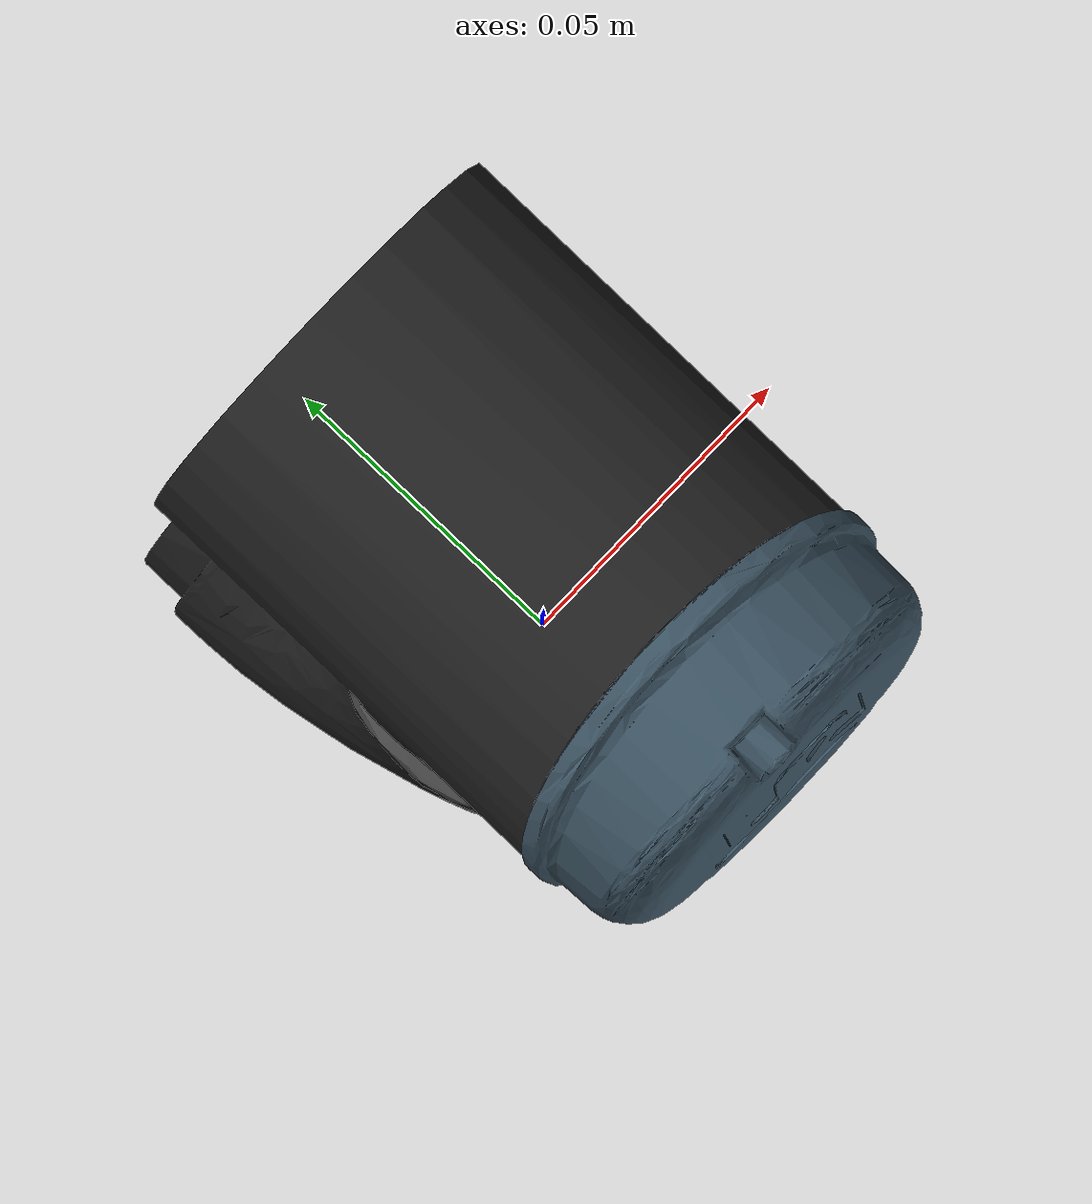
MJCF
<mujoco model="forearm">
  <default>
    <default class="visual">
      <geom group="2" type="mesh" contype="0" conaffinity="0"/>
    </default>
    <default class="collision">
      <geom group="3" type="mesh"/>
    </default>
  </default>
  <asset>
    <material name="Rohr.002" specular="0.5" shininess="0.25" rgba="0.335872 0.335872 0.335872 1.000000"/>
    <material name="blau.003" specular="0.5" shininess="0.25" rgba="0.250880 0.347520 0.409600 1.000000"/>
    <material name="verbindung.004" specular="0.5" shininess="0.25" rgba="0.142720 0.142720 0.142720 1.000000"/>
    <mesh file="forearm_0.obj"/>
    <mesh file="forearm_1.obj"/>
    <mesh file="forearm_2.obj"/>
  </asset>
  <worldbody>
    <body name="forearm">
      <geom mesh="forearm_0" material="blau.003" class="visual"/>
      <geom mesh="forearm_1" material="Rohr.002" class="visual"/>
      <geom mesh="forearm_2" material="verbindung.004" class="visual"/>
      <geom mesh="forearm_0" class="collision"/>
      <geom mesh="forearm_1" class="collision"/>
      <geom mesh="forearm_2" class="collision"/>
    </body>
  </worldbody>
</mujoco>
